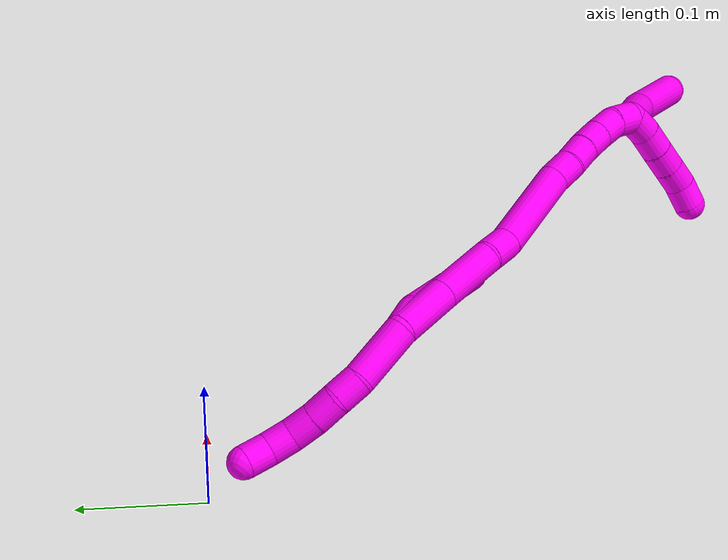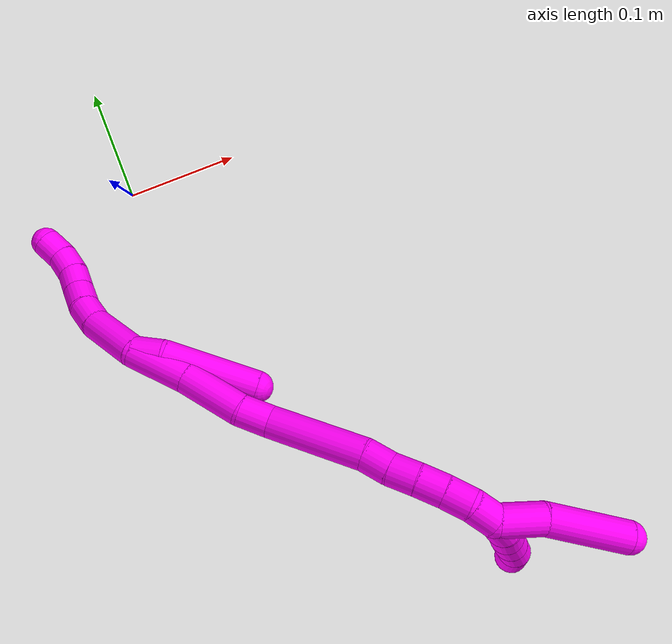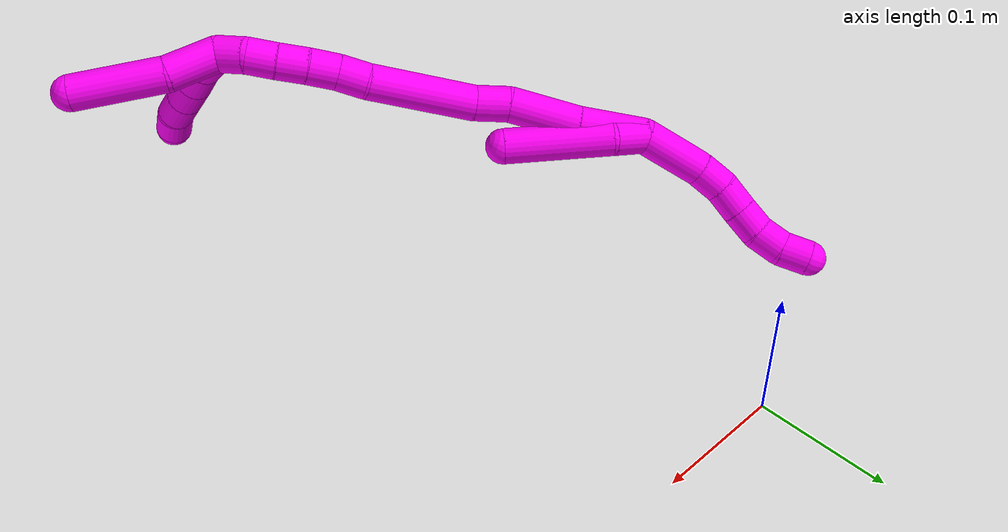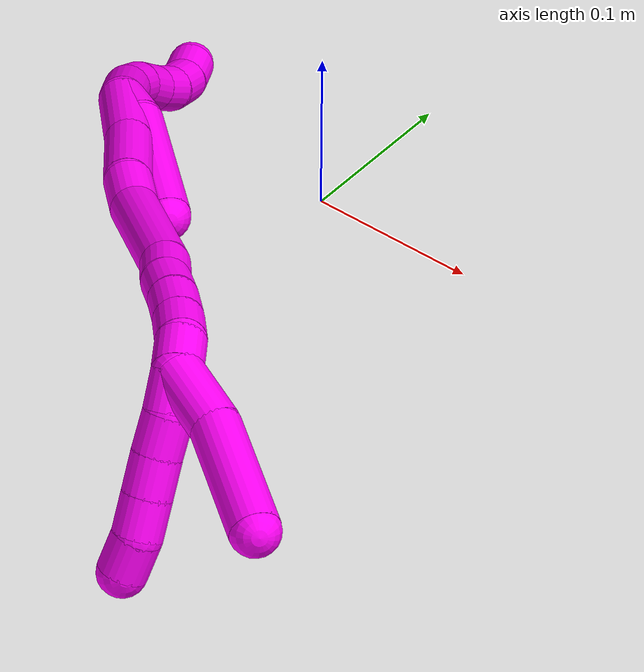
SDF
<sdf version="1.7">
 <world name="default">
  <model name="10">
   <static>0</static>
   <link name="10">
    <collision name="collision-cylinder-e_1_2_8">
     <pose>0.003211 0.003961 -0.023373 -2.97372 0.134643 -1.35116</pose>
     <geometry><cylinder><radius>0.0125</radius><length>0.047845</length></cylinder></geometry>
     <surface>
      <friction><ode><mu>1.16</mu><mu2>1.16</mu2><slip1>0</slip1><slip2>0</slip2></ode></friction>
      <contact><ode><kp>1e+06</kp><kd>1</kd><max_vel>0</max_vel><min_depth>0.001</min_depth></ode></contact>
     </surface>
    </collision>
    <visual name="visual-cylinder-e_1_2_8">
     <pose>0.003211 0.003961 -0.023373 -2.97372 0.134643 -1.35116</pose>
     <geometry><cylinder><radius>0.0125</radius><length>0.047845</length></cylinder></geometry>
     <material><ambient>1 0 0.964706 1</ambient></material>
    </visual>
    <collision name="collision-cylinder-e_2_8_9">
     <pose>0.008951 0.011729 -0.056246 -2.76041 0.242212 -1.12551</pose>
     <geometry><cylinder><radius>0.0125</radius><length>0.021085</length></cylinder></geometry>
     <surface>
      <friction><ode><mu>1.16</mu><mu2>1.16</mu2><slip1>0</slip1><slip2>0</slip2></ode></friction>
      <contact><ode><kp>1e+06</kp><kd>1</kd><max_vel>0</max_vel><min_depth>0.001</min_depth></ode></contact>
     </surface>
    </collision>
    <visual name="visual-cylinder-e_2_8_9">
     <pose>0.008951 0.011729 -0.056246 -2.76041 0.242212 -1.12551</pose>
     <geometry><cylinder><radius>0.0125</radius><length>0.021085</length></cylinder></geometry>
     <material><ambient>1 0 0.964706 1</ambient></material>
    </visual>
    <collision name="collision-cylinder-e_3_9_10">
     <pose>0.015958 0.019798 -0.074074 -2.66867 0.446464 -1.51118</pose>
     <geometry><cylinder><radius>0.0125</radius><length>0.020743</length></cylinder></geometry>
     <surface>
      <friction><ode><mu>1.16</mu><mu2>1.16</mu2><slip1>0</slip1><slip2>0</slip2></ode></friction>
      <contact><ode><kp>1e+06</kp><kd>1</kd><max_vel>0</max_vel><min_depth>0.001</min_depth></ode></contact>
     </surface>
    </collision>
    <visual name="visual-cylinder-e_3_9_10">
     <pose>0.015958 0.019798 -0.074074 -2.66867 0.446464 -1.51118</pose>
     <geometry><cylinder><radius>0.0125</radius><length>0.020743</length></cylinder></geometry>
     <material><ambient>1 0 0.964706 1</ambient></material>
    </visual>
    <collision name="collision-cylinder-e_4_10_11">
     <pose>0.02428 0.029065 -0.090241 -2.57329 0.391902 -1.19389</pose>
     <geometry><cylinder><radius>0.0125</radius><length>0.020129</length></cylinder></geometry>
     <surface>
      <friction><ode><mu>1.16</mu><mu2>1.16</mu2><slip1>0</slip1><slip2>0</slip2></ode></friction>
      <contact><ode><kp>1e+06</kp><kd>1</kd><max_vel>0</max_vel><min_depth>0.001</min_depth></ode></contact>
     </surface>
    </collision>
    <visual name="visual-cylinder-e_4_10_11">
     <pose>0.02428 0.029065 -0.090241 -2.57329 0.391902 -1.19389</pose>
     <geometry><cylinder><radius>0.0125</radius><length>0.020129</length></cylinder></geometry>
     <material><ambient>1 0 0.964706 1</ambient></material>
    </visual>
    <collision name="collision-cylinder-e_5_11_12">
     <pose>0.029484 0.039021 -0.106701 -2.62037 0.135976 -0.499997</pose>
     <geometry><cylinder><radius>0.0125</radius><length>0.020067</length></cylinder></geometry>
     <surface>
      <friction><ode><mu>1.16</mu><mu2>1.16</mu2><slip1>0</slip1><slip2>0</slip2></ode></friction>
      <contact><ode><kp>1e+06</kp><kd>1</kd><max_vel>0</max_vel><min_depth>0.001</min_depth></ode></contact>
     </surface>
    </collision>
    <visual name="visual-cylinder-e_5_11_12">
     <pose>0.029484 0.039021 -0.106701 -2.62037 0.135976 -0.499997</pose>
     <geometry><cylinder><radius>0.0125</radius><length>0.020067</length></cylinder></geometry>
     <material><ambient>1 0 0.964706 1</ambient></material>
    </visual>
    <collision name="collision-cylinder-e_6_12_6">
     <pose>0.029554 0.048224 -0.124353 -2.70139 -0.128552 0.56026</pose>
     <geometry><cylinder><radius>0.0125</radius><length>0.020133</length></cylinder></geometry>
     <surface>
      <friction><ode><mu>1.16</mu><mu2>1.16</mu2><slip1>0</slip1><slip2>0</slip2></ode></friction>
      <contact><ode><kp>1e+06</kp><kd>1</kd><max_vel>0</max_vel><min_depth>0.001</min_depth></ode></contact>
     </surface>
    </collision>
    <visual name="visual-cylinder-e_6_12_6">
     <pose>0.029554 0.048224 -0.124353 -2.70139 -0.128552 0.56026</pose>
     <geometry><cylinder><radius>0.0125</radius><length>0.020133</length></cylinder></geometry>
     <material><ambient>1 0 0.964706 1</ambient></material>
    </visual>
    <collision name="collision-cylinder-e_1_2_13">
     <pose>0.004308 0.00141 0.011112 -0.126173 0.367172 -0.023457</pose>
     <geometry><cylinder><radius>0.0125</radius><length>0.024002</length></cylinder></geometry>
     <surface>
      <friction><ode><mu>1.16</mu><mu2>1.16</mu2><slip1>0</slip1><slip2>0</slip2></ode></friction>
      <contact><ode><kp>1e+06</kp><kd>1</kd><max_vel>0</max_vel><min_depth>0.001</min_depth></ode></contact>
     </surface>
    </collision>
    <visual name="visual-cylinder-e_1_2_13">
     <pose>0.004308 0.00141 0.011112 -0.126173 0.367172 -0.023457</pose>
     <geometry><cylinder><radius>0.0125</radius><length>0.024002</length></cylinder></geometry>
     <material><ambient>1 0 0.964706 1</ambient></material>
    </visual>
    <collision name="collision-cylinder-e_2_13_5">
     <pose>0.025888 -0.001695 0.055769 0.133776 0.471844 0.032205</pose>
     <geometry><cylinder><radius>0.0125</radius><length>0.075998</length></cylinder></geometry>
     <surface>
      <friction><ode><mu>1.16</mu><mu2>1.16</mu2><slip1>0</slip1><slip2>0</slip2></ode></friction>
      <contact><ode><kp>1e+06</kp><kd>1</kd><max_vel>0</max_vel><min_depth>0.001</min_depth></ode></contact>
     </surface>
    </collision>
    <visual name="visual-cylinder-e_2_13_5">
     <pose>0.025888 -0.001695 0.055769 0.133776 0.471844 0.032205</pose>
     <geometry><cylinder><radius>0.0125</radius><length>0.075998</length></cylinder></geometry>
     <material><ambient>1 0 0.964706 1</ambient></material>
    </visual>
    <collision name="collision-cylinder-e_1_2_14">
     <pose>0.00516 -0.003868 0.022931 0.167125 0.218366 0.018362</pose>
     <geometry><cylinder><radius>0.0125</radius><length>0.047641</length></cylinder></geometry>
     <surface>
      <friction><ode><mu>1.16</mu><mu2>1.16</mu2><slip1>0</slip1><slip2>0</slip2></ode></friction>
      <contact><ode><kp>1e+06</kp><kd>1</kd><max_vel>0</max_vel><min_depth>0.001</min_depth></ode></contact>
     </surface>
    </collision>
    <visual name="visual-cylinder-e_1_2_14">
     <pose>0.00516 -0.003868 0.022931 0.167125 0.218366 0.018362</pose>
     <geometry><cylinder><radius>0.0125</radius><length>0.047641</length></cylinder></geometry>
     <material><ambient>1 0 0.964706 1</ambient></material>
    </visual>
    <collision name="collision-cylinder-e_2_14_15">
     <pose>0.013688 -0.013177 0.069887 0.222678 0.135859 0.015212</pose>
     <geometry><cylinder><radius>0.0125</radius><length>0.049725</length></cylinder></geometry>
     <surface>
      <friction><ode><mu>1.16</mu><mu2>1.16</mu2><slip1>0</slip1><slip2>0</slip2></ode></friction>
      <contact><ode><kp>1e+06</kp><kd>1</kd><max_vel>0</max_vel><min_depth>0.001</min_depth></ode></contact>
     </surface>
    </collision>
    <visual name="visual-cylinder-e_2_14_15">
     <pose>0.013688 -0.013177 0.069887 0.222678 0.135859 0.015212</pose>
     <geometry><cylinder><radius>0.0125</radius><length>0.049725</length></cylinder></geometry>
     <material><ambient>1 0 0.964706 1</ambient></material>
    </visual>
    <collision name="collision-cylinder-e_3_15_16">
     <pose>0.021359 -0.020217 0.105198 0.140849 0.361008 0.025745</pose>
     <geometry><cylinder><radius>0.0125</radius><length>0.024369</length></cylinder></geometry>
     <surface>
      <friction><ode><mu>1.16</mu><mu2>1.16</mu2><slip1>0</slip1><slip2>0</slip2></ode></friction>
      <contact><ode><kp>1e+06</kp><kd>1</kd><max_vel>0</max_vel><min_depth>0.001</min_depth></ode></contact>
     </surface>
    </collision>
    <visual name="visual-cylinder-e_3_15_16">
     <pose>0.021359 -0.020217 0.105198 0.140849 0.361008 0.025745</pose>
     <geometry><cylinder><radius>0.0125</radius><length>0.024369</length></cylinder></geometry>
     <material><ambient>1 0 0.964706 1</ambient></material>
    </visual>
    <collision name="collision-cylinder-e_4_16_17">
     <pose>0.031339 -0.0222 0.154057 0.010177 0.149912 0.000764</pose>
     <geometry><cylinder><radius>0.0125</radius><length>0.076001</length></cylinder></geometry>
     <surface>
      <friction><ode><mu>1.16</mu><mu2>1.16</mu2><slip1>0</slip1><slip2>0</slip2></ode></friction>
      <contact><ode><kp>1e+06</kp><kd>1</kd><max_vel>0</max_vel><min_depth>0.001</min_depth></ode></contact>
     </surface>
    </collision>
    <visual name="visual-cylinder-e_4_16_17">
     <pose>0.031339 -0.0222 0.154057 0.010177 0.149912 0.000764</pose>
     <geometry><cylinder><radius>0.0125</radius><length>0.076001</length></cylinder></geometry>
     <material><ambient>1 0 0.964706 1</ambient></material>
    </visual>
    <collision name="collision-cylinder-e_5_17_18">
     <pose>0.038015 -0.024494 0.201752 0.186704 0.096829 0.009073</pose>
     <geometry><cylinder><radius>0.0125</radius><length>0.020701</length></cylinder></geometry>
     <surface>
      <friction><ode><mu>1.16</mu><mu2>1.16</mu2><slip1>0</slip1><slip2>0</slip2></ode></friction>
      <contact><ode><kp>1e+06</kp><kd>1</kd><max_vel>0</max_vel><min_depth>0.001</min_depth></ode></contact>
     </surface>
    </collision>
    <visual name="visual-cylinder-e_5_17_18">
     <pose>0.038015 -0.024494 0.201752 0.186704 0.096829 0.009073</pose>
     <geometry><cylinder><radius>0.0125</radius><length>0.020701</length></cylinder></geometry>
     <material><ambient>1 0 0.964706 1</ambient></material>
    </visual>
    <collision name="collision-cylinder-e_6_18_19">
     <pose>0.040733 -0.026972 0.222086 0.05528 0.166432 0.004612</pose>
     <geometry><cylinder><radius>0.0125</radius><length>0.02074</length></cylinder></geometry>
     <surface>
      <friction><ode><mu>1.16</mu><mu2>1.16</mu2><slip1>0</slip1><slip2>0</slip2></ode></friction>
      <contact><ode><kp>1e+06</kp><kd>1</kd><max_vel>0</max_vel><min_depth>0.001</min_depth></ode></contact>
     </surface>
    </collision>
    <visual name="visual-cylinder-e_6_18_19">
     <pose>0.040733 -0.026972 0.222086 0.05528 0.166432 0.004612</pose>
     <geometry><cylinder><radius>0.0125</radius><length>0.02074</length></cylinder></geometry>
     <material><ambient>1 0 0.964706 1</ambient></material>
    </visual>
    <collision name="collision-cylinder-e_7_19_20">
     <pose>0.044791 -0.028765 0.242225 0.12311 0.229746 0.014222</pose>
     <geometry><cylinder><radius>0.0125</radius><length>0.020547</length></cylinder></geometry>
     <surface>
      <friction><ode><mu>1.16</mu><mu2>1.16</mu2><slip1>0</slip1><slip2>0</slip2></ode></friction>
      <contact><ode><kp>1e+06</kp><kd>1</kd><max_vel>0</max_vel><min_depth>0.001</min_depth></ode></contact>
     </surface>
    </collision>
    <visual name="visual-cylinder-e_7_19_20">
     <pose>0.044791 -0.028765 0.242225 0.12311 0.229746 0.014222</pose>
     <geometry><cylinder><radius>0.0125</radius><length>0.020547</length></cylinder></geometry>
     <material><ambient>1 0 0.964706 1</ambient></material>
    </visual>
    <collision name="collision-cylinder-e_8_20_21">
     <pose>0.049315 -0.031826 0.261876 0.186251 0.217351 0.020379</pose>
     <geometry><cylinder><radius>0.0125</radius><length>0.020265</length></cylinder></geometry>
     <surface>
      <friction><ode><mu>1.16</mu><mu2>1.16</mu2><slip1>0</slip1><slip2>0</slip2></ode></friction>
      <contact><ode><kp>1e+06</kp><kd>1</kd><max_vel>0</max_vel><min_depth>0.001</min_depth></ode></contact>
     </surface>
    </collision>
    <visual name="visual-cylinder-e_8_20_21">
     <pose>0.049315 -0.031826 0.261876 0.186251 0.217351 0.020379</pose>
     <geometry><cylinder><radius>0.0125</radius><length>0.020265</length></cylinder></geometry>
     <material><ambient>1 0 0.964706 1</ambient></material>
    </visual>
    <collision name="collision-cylinder-e_9_21_1">
     <pose>0.055491 -0.037549 0.279909 0.437903 0.410262 0.092527</pose>
     <geometry><cylinder><radius>0.0125</radius><length>0.020011</length></cylinder></geometry>
     <surface>
      <friction><ode><mu>1.16</mu><mu2>1.16</mu2><slip1>0</slip1><slip2>0</slip2></ode></friction>
      <contact><ode><kp>1e+06</kp><kd>1</kd><max_vel>0</max_vel><min_depth>0.001</min_depth></ode></contact>
     </surface>
    </collision>
    <visual name="visual-cylinder-e_9_21_1">
     <pose>0.055491 -0.037549 0.279909 0.437903 0.410262 0.092527</pose>
     <geometry><cylinder><radius>0.0125</radius><length>0.020011</length></cylinder></geometry>
     <material><ambient>1 0 0.964706 1</ambient></material>
    </visual>
    <collision name="collision-cylinder-e_1_1_22">
     <pose>0.070927 -0.038553 0.301706 -0.210784 0.692624 -0.076308</pose>
     <geometry><cylinder><radius>0.0125</radius><length>0.035846</length></cylinder></geometry>
     <surface>
      <friction><ode><mu>1.16</mu><mu2>1.16</mu2><slip1>0</slip1><slip2>0</slip2></ode></friction>
      <contact><ode><kp>1e+06</kp><kd>1</kd><max_vel>0</max_vel><min_depth>0.001</min_depth></ode></contact>
     </surface>
    </collision>
    <visual name="visual-cylinder-e_1_1_22">
     <pose>0.070927 -0.038553 0.301706 -0.210784 0.692624 -0.076308</pose>
     <geometry><cylinder><radius>0.0125</radius><length>0.035846</length></cylinder></geometry>
     <material><ambient>1 0 0.964706 1</ambient></material>
    </visual>
    <collision name="collision-cylinder-e_2_22_4">
     <pose>0.099979 -0.037413 0.341949 0.065155 0.581064 0.019487</pose>
     <geometry><cylinder><radius>0.0125</radius><length>0.064154</length></cylinder></geometry>
     <surface>
      <friction><ode><mu>1.16</mu><mu2>1.16</mu2><slip1>0</slip1><slip2>0</slip2></ode></friction>
      <contact><ode><kp>1e+06</kp><kd>1</kd><max_vel>0</max_vel><min_depth>0.001</min_depth></ode></contact>
     </surface>
    </collision>
    <visual name="visual-cylinder-e_2_22_4">
     <pose>0.099979 -0.037413 0.341949 0.065155 0.581064 0.019487</pose>
     <geometry><cylinder><radius>0.0125</radius><length>0.064154</length></cylinder></geometry>
     <material><ambient>1 0 0.964706 1</ambient></material>
    </visual>
    <collision name="collision-cylinder-e_1_1_23">
     <pose>0.067611 -0.046948 0.290108 1.2403 0.949179 0.703284</pose>
     <geometry><cylinder><radius>0.0125</radius><length>0.02</length></cylinder></geometry>
     <surface>
      <friction><ode><mu>1.16</mu><mu2>1.16</mu2><slip1>0</slip1><slip2>0</slip2></ode></friction>
      <contact><ode><kp>1e+06</kp><kd>1</kd><max_vel>0</max_vel><min_depth>0.001</min_depth></ode></contact>
     </surface>
    </collision>
    <visual name="visual-cylinder-e_1_1_23">
     <pose>0.067611 -0.046948 0.290108 1.2403 0.949179 0.703284</pose>
     <geometry><cylinder><radius>0.0125</radius><length>0.02</length></cylinder></geometry>
     <material><ambient>1 0 0.964706 1</ambient></material>
    </visual>
    <collision name="collision-cylinder-e_2_23_24">
     <pose>0.083879 -0.058267 0.29192 1.58421 0.950699 0.961659</pose>
     <geometry><cylinder><radius>0.0125</radius><length>0.02</length></cylinder></geometry>
     <surface>
      <friction><ode><mu>1.16</mu><mu2>1.16</mu2><slip1>0</slip1><slip2>0</slip2></ode></friction>
      <contact><ode><kp>1e+06</kp><kd>1</kd><max_vel>0</max_vel><min_depth>0.001</min_depth></ode></contact>
     </surface>
    </collision>
    <visual name="visual-cylinder-e_2_23_24">
     <pose>0.083879 -0.058267 0.29192 1.58421 0.950699 0.961659</pose>
     <geometry><cylinder><radius>0.0125</radius><length>0.02</length></cylinder></geometry>
     <material><ambient>1 0 0.964706 1</ambient></material>
    </visual>
    <collision name="collision-cylinder-e_3_24_25">
     <pose>0.100309 -0.069657 0.292166 1.51269 0.977702 0.930283</pose>
     <geometry><cylinder><radius>0.0125</radius><length>0.02</length></cylinder></geometry>
     <surface>
      <friction><ode><mu>1.16</mu><mu2>1.16</mu2><slip1>0</slip1><slip2>0</slip2></ode></friction>
      <contact><ode><kp>1e+06</kp><kd>1</kd><max_vel>0</max_vel><min_depth>0.001</min_depth></ode></contact>
     </surface>
    </collision>
    <visual name="visual-cylinder-e_3_24_25">
     <pose>0.100309 -0.069657 0.292166 1.51269 0.977702 0.930283</pose>
     <geometry><cylinder><radius>0.0125</radius><length>0.02</length></cylinder></geometry>
     <material><ambient>1 0 0.964706 1</ambient></material>
    </visual>
    <collision name="collision-cylinder-e_4_25_26">
     <pose>0.116893 -0.080821 0.292755 1.52346 0.977604 0.938867</pose>
     <geometry><cylinder><radius>0.0125</radius><length>0.02</length></cylinder></geometry>
     <surface>
      <friction><ode><mu>1.16</mu><mu2>1.16</mu2><slip1>0</slip1><slip2>0</slip2></ode></friction>
      <contact><ode><kp>1e+06</kp><kd>1</kd><max_vel>0</max_vel><min_depth>0.001</min_depth></ode></contact>
     </surface>
    </collision>
    <visual name="visual-cylinder-e_4_25_26">
     <pose>0.116893 -0.080821 0.292755 1.52346 0.977604 0.938867</pose>
     <geometry><cylinder><radius>0.0125</radius><length>0.02</length></cylinder></geometry>
     <material><ambient>1 0 0.964706 1</ambient></material>
    </visual>
    <collision name="collision-cylinder-e_5_26_3">
     <pose>0.132737 -0.092563 0.290776 1.92021 0.856045 1.15529</pose>
     <geometry><cylinder><radius>0.0125</radius><length>0.02</length></cylinder></geometry>
     <surface>
      <friction><ode><mu>1.16</mu><mu2>1.16</mu2><slip1>0</slip1><slip2>0</slip2></ode></friction>
      <contact><ode><kp>1e+06</kp><kd>1</kd><max_vel>0</max_vel><min_depth>0.001</min_depth></ode></contact>
     </surface>
    </collision>
    <visual name="visual-cylinder-e_5_26_3">
     <pose>0.132737 -0.092563 0.290776 1.92021 0.856045 1.15529</pose>
     <geometry><cylinder><radius>0.0125</radius><length>0.02</length></cylinder></geometry>
     <material><ambient>1 0 0.964706 1</ambient></material>
    </visual>
    <collision name="collision-sphere-3">
     <pose>0.14029 -0.098721 0.288532 0 -0 0</pose>
     <geometry><sphere><radius>0.0125</radius></sphere></geometry>
     <surface>
      <friction><ode><mu>1.16</mu><mu2>1.16</mu2><slip1>0</slip1><slip2>0</slip2></ode></friction>
      <contact><ode><kp>1e+06</kp><kd>1</kd><max_vel>0</max_vel><min_depth>0.001</min_depth></ode></contact>
     </surface>
    </collision>
    <visual name="visual-sphere-3">
     <pose>0.14029 -0.098721 0.288532 0 -0 0</pose>
     <geometry><sphere><radius>0.0125</radius></sphere></geometry>
     <material><ambient>1 0 0.964706 1</ambient></material>
    </visual>
    <collision name="collision-sphere-26">
     <pose>0.125184 -0.086405 0.29302 0 -0 0</pose>
     <geometry><sphere><radius>0.0125</radius></sphere></geometry>
     <surface>
      <friction><ode><mu>1.16</mu><mu2>1.16</mu2><slip1>0</slip1><slip2>0</slip2></ode></friction>
      <contact><ode><kp>1e+06</kp><kd>1</kd><max_vel>0</max_vel><min_depth>0.001</min_depth></ode></contact>
     </surface>
    </collision>
    <visual name="visual-sphere-26">
     <pose>0.125184 -0.086405 0.29302 0 -0 0</pose>
     <geometry><sphere><radius>0.0125</radius></sphere></geometry>
     <material><ambient>1 0 0.964706 1</ambient></material>
    </visual>
    <collision name="collision-sphere-25">
     <pose>0.108601 -0.075237 0.292491 0 -0 0</pose>
     <geometry><sphere><radius>0.0125</radius></sphere></geometry>
     <surface>
      <friction><ode><mu>1.16</mu><mu2>1.16</mu2><slip1>0</slip1><slip2>0</slip2></ode></friction>
      <contact><ode><kp>1e+06</kp><kd>1</kd><max_vel>0</max_vel><min_depth>0.001</min_depth></ode></contact>
     </surface>
    </collision>
    <visual name="visual-sphere-25">
     <pose>0.108601 -0.075237 0.292491 0 -0 0</pose>
     <geometry><sphere><radius>0.0125</radius></sphere></geometry>
     <material><ambient>1 0 0.964706 1</ambient></material>
    </visual>
    <collision name="collision-sphere-24">
     <pose>0.092017 -0.064077 0.291842 0 -0 0</pose>
     <geometry><sphere><radius>0.0125</radius></sphere></geometry>
     <surface>
      <friction><ode><mu>1.16</mu><mu2>1.16</mu2><slip1>0</slip1><slip2>0</slip2></ode></friction>
      <contact><ode><kp>1e+06</kp><kd>1</kd><max_vel>0</max_vel><min_depth>0.001</min_depth></ode></contact>
     </surface>
    </collision>
    <visual name="visual-sphere-24">
     <pose>0.092017 -0.064077 0.291842 0 -0 0</pose>
     <geometry><sphere><radius>0.0125</radius></sphere></geometry>
     <material><ambient>1 0 0.964706 1</ambient></material>
    </visual>
    <collision name="collision-sphere-23">
     <pose>0.07574 -0.052456 0.291997 0 -0 0</pose>
     <geometry><sphere><radius>0.0125</radius></sphere></geometry>
     <surface>
      <friction><ode><mu>1.16</mu><mu2>1.16</mu2><slip1>0</slip1><slip2>0</slip2></ode></friction>
      <contact><ode><kp>1e+06</kp><kd>1</kd><max_vel>0</max_vel><min_depth>0.001</min_depth></ode></contact>
     </surface>
    </collision>
    <visual name="visual-sphere-23">
     <pose>0.07574 -0.052456 0.291997 0 -0 0</pose>
     <geometry><sphere><radius>0.0125</radius></sphere></geometry>
     <material><ambient>1 0 0.964706 1</ambient></material>
    </visual>
    <collision name="collision-sphere-4">
     <pose>0.117586 -0.039159 0.368705 0 -0 0</pose>
     <geometry><sphere><radius>0.0125</radius></sphere></geometry>
     <surface>
      <friction><ode><mu>1.16</mu><mu2>1.16</mu2><slip1>0</slip1><slip2>0</slip2></ode></friction>
      <contact><ode><kp>1e+06</kp><kd>1</kd><max_vel>0</max_vel><min_depth>0.001</min_depth></ode></contact>
     </surface>
    </collision>
    <visual name="visual-sphere-4">
     <pose>0.117586 -0.039159 0.368705 0 -0 0</pose>
     <geometry><sphere><radius>0.0125</radius></sphere></geometry>
     <material><ambient>1 0 0.964706 1</ambient></material>
    </visual>
    <collision name="collision-sphere-22">
     <pose>0.082371 -0.035668 0.315193 0 -0 0</pose>
     <geometry><sphere><radius>0.0125</radius></sphere></geometry>
     <surface>
      <friction><ode><mu>1.16</mu><mu2>1.16</mu2><slip1>0</slip1><slip2>0</slip2></ode></friction>
      <contact><ode><kp>1e+06</kp><kd>1</kd><max_vel>0</max_vel><min_depth>0.001</min_depth></ode></contact>
     </surface>
    </collision>
    <visual name="visual-sphere-22">
     <pose>0.082371 -0.035668 0.315193 0 -0 0</pose>
     <geometry><sphere><radius>0.0125</radius></sphere></geometry>
     <material><ambient>1 0 0.964706 1</ambient></material>
    </visual>
    <collision name="collision-sphere-1">
     <pose>0.059482 -0.041439 0.288218 0 -0 0</pose>
     <geometry><sphere><radius>0.0125</radius></sphere></geometry>
     <surface>
      <friction><ode><mu>1.16</mu><mu2>1.16</mu2><slip1>0</slip1><slip2>0</slip2></ode></friction>
      <contact><ode><kp>1e+06</kp><kd>1</kd><max_vel>0</max_vel><min_depth>0.001</min_depth></ode></contact>
     </surface>
    </collision>
    <visual name="visual-sphere-1">
     <pose>0.059482 -0.041439 0.288218 0 -0 0</pose>
     <geometry><sphere><radius>0.0125</radius></sphere></geometry>
     <material><ambient>1 0 0.964706 1</ambient></material>
    </visual>
    <collision name="collision-sphere-21">
     <pose>0.0515 -0.033658 0.271599 0 -0 0</pose>
     <geometry><sphere><radius>0.0125</radius></sphere></geometry>
     <surface>
      <friction><ode><mu>1.16</mu><mu2>1.16</mu2><slip1>0</slip1><slip2>0</slip2></ode></friction>
      <contact><ode><kp>1e+06</kp><kd>1</kd><max_vel>0</max_vel><min_depth>0.001</min_depth></ode></contact>
     </surface>
    </collision>
    <visual name="visual-sphere-21">
     <pose>0.0515 -0.033658 0.271599 0 -0 0</pose>
     <geometry><sphere><radius>0.0125</radius></sphere></geometry>
     <material><ambient>1 0 0.964706 1</ambient></material>
    </visual>
    <collision name="collision-sphere-12">
     <pose>0.030844 0.04397 -0.115321 0 -0 0</pose>
     <geometry><sphere><radius>0.0125</radius></sphere></geometry>
     <surface>
      <friction><ode><mu>1.16</mu><mu2>1.16</mu2><slip1>0</slip1><slip2>0</slip2></ode></friction>
      <contact><ode><kp>1e+06</kp><kd>1</kd><max_vel>0</max_vel><min_depth>0.001</min_depth></ode></contact>
     </surface>
    </collision>
    <visual name="visual-sphere-12">
     <pose>0.030844 0.04397 -0.115321 0 -0 0</pose>
     <geometry><sphere><radius>0.0125</radius></sphere></geometry>
     <material><ambient>1 0 0.964706 1</ambient></material>
    </visual>
    <collision name="collision-sphere-11">
     <pose>0.028124 0.034071 -0.09808 0 -0 0</pose>
     <geometry><sphere><radius>0.0125</radius></sphere></geometry>
     <surface>
      <friction><ode><mu>1.16</mu><mu2>1.16</mu2><slip1>0</slip1><slip2>0</slip2></ode></friction>
      <contact><ode><kp>1e+06</kp><kd>1</kd><max_vel>0</max_vel><min_depth>0.001</min_depth></ode></contact>
     </surface>
    </collision>
    <visual name="visual-sphere-11">
     <pose>0.028124 0.034071 -0.09808 0 -0 0</pose>
     <geometry><sphere><radius>0.0125</radius></sphere></geometry>
     <material><ambient>1 0 0.964706 1</ambient></material>
    </visual>
    <collision name="collision-sphere-10">
     <pose>0.020436 0.024059 -0.082401 0 -0 0</pose>
     <geometry><sphere><radius>0.0125</radius></sphere></geometry>
     <surface>
      <friction><ode><mu>1.16</mu><mu2>1.16</mu2><slip1>0</slip1><slip2>0</slip2></ode></friction>
      <contact><ode><kp>1e+06</kp><kd>1</kd><max_vel>0</max_vel><min_depth>0.001</min_depth></ode></contact>
     </surface>
    </collision>
    <visual name="visual-sphere-10">
     <pose>0.020436 0.024059 -0.082401 0 -0 0</pose>
     <geometry><sphere><radius>0.0125</radius></sphere></geometry>
     <material><ambient>1 0 0.964706 1</ambient></material>
    </visual>
    <collision name="collision-sphere-9">
     <pose>0.01148 0.015537 -0.065746 0 -0 0</pose>
     <geometry><sphere><radius>0.0125</radius></sphere></geometry>
     <surface>
      <friction><ode><mu>1.16</mu><mu2>1.16</mu2><slip1>0</slip1><slip2>0</slip2></ode></friction>
      <contact><ode><kp>1e+06</kp><kd>1</kd><max_vel>0</max_vel><min_depth>0.001</min_depth></ode></contact>
     </surface>
    </collision>
    <visual name="visual-sphere-9">
     <pose>0.01148 0.015537 -0.065746 0 -0 0</pose>
     <geometry><sphere><radius>0.0125</radius></sphere></geometry>
     <material><ambient>1 0 0.964706 1</ambient></material>
    </visual>
    <collision name="collision-sphere-2">
     <geometry><sphere><radius>0.0125</radius></sphere></geometry>
     <surface>
      <friction><ode><mu>1.16</mu><mu2>1.16</mu2><slip1>0</slip1><slip2>0</slip2></ode></friction>
      <contact><ode><kp>1e+06</kp><kd>1</kd><max_vel>0</max_vel><min_depth>0.001</min_depth></ode></contact>
     </surface>
    </collision>
    <visual name="visual-sphere-2">
     <geometry><sphere><radius>0.0125</radius></sphere></geometry>
     <material><ambient>1 0 0.964706 1</ambient></material>
    </visual>
    <collision name="collision-sphere-19">
     <pose>0.042451 -0.027537 0.232297 0 -0 0</pose>
     <geometry><sphere><radius>0.0125</radius></sphere></geometry>
     <surface>
      <friction><ode><mu>1.16</mu><mu2>1.16</mu2><slip1>0</slip1><slip2>0</slip2></ode></friction>
      <contact><ode><kp>1e+06</kp><kd>1</kd><max_vel>0</max_vel><min_depth>0.001</min_depth></ode></contact>
     </surface>
    </collision>
    <visual name="visual-sphere-19">
     <pose>0.042451 -0.027537 0.232297 0 -0 0</pose>
     <geometry><sphere><radius>0.0125</radius></sphere></geometry>
     <material><ambient>1 0 0.964706 1</ambient></material>
    </visual>
    <collision name="collision-sphere-8">
     <pose>0.006423 0.007922 -0.046745 0 -0 0</pose>
     <geometry><sphere><radius>0.0125</radius></sphere></geometry>
     <surface>
      <friction><ode><mu>1.16</mu><mu2>1.16</mu2><slip1>0</slip1><slip2>0</slip2></ode></friction>
      <contact><ode><kp>1e+06</kp><kd>1</kd><max_vel>0</max_vel><min_depth>0.001</min_depth></ode></contact>
     </surface>
    </collision>
    <visual name="visual-sphere-8">
     <pose>0.006423 0.007922 -0.046745 0 -0 0</pose>
     <geometry><sphere><radius>0.0125</radius></sphere></geometry>
     <material><ambient>1 0 0.964706 1</ambient></material>
    </visual>
    <collision name="collision-sphere-6">
     <pose>0.028263 0.052479 -0.133384 0 -0 0</pose>
     <geometry><sphere><radius>0.0125</radius></sphere></geometry>
     <surface>
      <friction><ode><mu>1.16</mu><mu2>1.16</mu2><slip1>0</slip1><slip2>0</slip2></ode></friction>
      <contact><ode><kp>1e+06</kp><kd>1</kd><max_vel>0</max_vel><min_depth>0.001</min_depth></ode></contact>
     </surface>
    </collision>
    <visual name="visual-sphere-6">
     <pose>0.028263 0.052479 -0.133384 0 -0 0</pose>
     <geometry><sphere><radius>0.0125</radius></sphere></geometry>
     <material><ambient>1 0 0.964706 1</ambient></material>
    </visual>
    <collision name="collision-sphere-13">
     <pose>0.008616 0.002819 0.022224 0 -0 0</pose>
     <geometry><sphere><radius>0.0125</radius></sphere></geometry>
     <surface>
      <friction><ode><mu>1.16</mu><mu2>1.16</mu2><slip1>0</slip1><slip2>0</slip2></ode></friction>
      <contact><ode><kp>1e+06</kp><kd>1</kd><max_vel>0</max_vel><min_depth>0.001</min_depth></ode></contact>
     </surface>
    </collision>
    <visual name="visual-sphere-13">
     <pose>0.008616 0.002819 0.022224 0 -0 0</pose>
     <geometry><sphere><radius>0.0125</radius></sphere></geometry>
     <material><ambient>1 0 0.964706 1</ambient></material>
    </visual>
    <collision name="collision-sphere-5">
     <pose>0.043159 -0.00621 0.089313 0 -0 0</pose>
     <geometry><sphere><radius>0.0125</radius></sphere></geometry>
     <surface>
      <friction><ode><mu>1.16</mu><mu2>1.16</mu2><slip1>0</slip1><slip2>0</slip2></ode></friction>
      <contact><ode><kp>1e+06</kp><kd>1</kd><max_vel>0</max_vel><min_depth>0.001</min_depth></ode></contact>
     </surface>
    </collision>
    <visual name="visual-sphere-5">
     <pose>0.043159 -0.00621 0.089313 0 -0 0</pose>
     <geometry><sphere><radius>0.0125</radius></sphere></geometry>
     <material><ambient>1 0 0.964706 1</ambient></material>
    </visual>
    <collision name="collision-sphere-14">
     <pose>0.010321 -0.007737 0.045862 0 -0 0</pose>
     <geometry><sphere><radius>0.0125</radius></sphere></geometry>
     <surface>
      <friction><ode><mu>1.16</mu><mu2>1.16</mu2><slip1>0</slip1><slip2>0</slip2></ode></friction>
      <contact><ode><kp>1e+06</kp><kd>1</kd><max_vel>0</max_vel><min_depth>0.001</min_depth></ode></contact>
     </surface>
    </collision>
    <visual name="visual-sphere-14">
     <pose>0.010321 -0.007737 0.045862 0 -0 0</pose>
     <geometry><sphere><radius>0.0125</radius></sphere></geometry>
     <material><ambient>1 0 0.964706 1</ambient></material>
    </visual>
    <collision name="collision-sphere-15">
     <pose>0.017056 -0.018617 0.093912 0 -0 0</pose>
     <geometry><sphere><radius>0.0125</radius></sphere></geometry>
     <surface>
      <friction><ode><mu>1.16</mu><mu2>1.16</mu2><slip1>0</slip1><slip2>0</slip2></ode></friction>
      <contact><ode><kp>1e+06</kp><kd>1</kd><max_vel>0</max_vel><min_depth>0.001</min_depth></ode></contact>
     </surface>
    </collision>
    <visual name="visual-sphere-15">
     <pose>0.017056 -0.018617 0.093912 0 -0 0</pose>
     <geometry><sphere><radius>0.0125</radius></sphere></geometry>
     <material><ambient>1 0 0.964706 1</ambient></material>
    </visual>
    <collision name="collision-sphere-16">
     <pose>0.025663 -0.021817 0.116485 0 -0 0</pose>
     <geometry><sphere><radius>0.0125</radius></sphere></geometry>
     <surface>
      <friction><ode><mu>1.16</mu><mu2>1.16</mu2><slip1>0</slip1><slip2>0</slip2></ode></friction>
      <contact><ode><kp>1e+06</kp><kd>1</kd><max_vel>0</max_vel><min_depth>0.001</min_depth></ode></contact>
     </surface>
    </collision>
    <visual name="visual-sphere-16">
     <pose>0.025663 -0.021817 0.116485 0 -0 0</pose>
     <geometry><sphere><radius>0.0125</radius></sphere></geometry>
     <material><ambient>1 0 0.964706 1</ambient></material>
    </visual>
    <collision name="collision-sphere-17">
     <pose>0.037014 -0.022582 0.191629 0 -0 0</pose>
     <geometry><sphere><radius>0.0125</radius></sphere></geometry>
     <surface>
      <friction><ode><mu>1.16</mu><mu2>1.16</mu2><slip1>0</slip1><slip2>0</slip2></ode></friction>
      <contact><ode><kp>1e+06</kp><kd>1</kd><max_vel>0</max_vel><min_depth>0.001</min_depth></ode></contact>
     </surface>
    </collision>
    <visual name="visual-sphere-17">
     <pose>0.037014 -0.022582 0.191629 0 -0 0</pose>
     <geometry><sphere><radius>0.0125</radius></sphere></geometry>
     <material><ambient>1 0 0.964706 1</ambient></material>
    </visual>
    <collision name="collision-sphere-18">
     <pose>0.039015 -0.026407 0.211875 0 -0 0</pose>
     <geometry><sphere><radius>0.0125</radius></sphere></geometry>
     <surface>
      <friction><ode><mu>1.16</mu><mu2>1.16</mu2><slip1>0</slip1><slip2>0</slip2></ode></friction>
      <contact><ode><kp>1e+06</kp><kd>1</kd><max_vel>0</max_vel><min_depth>0.001</min_depth></ode></contact>
     </surface>
    </collision>
    <visual name="visual-sphere-18">
     <pose>0.039015 -0.026407 0.211875 0 -0 0</pose>
     <geometry><sphere><radius>0.0125</radius></sphere></geometry>
     <material><ambient>1 0 0.964706 1</ambient></material>
    </visual>
    <collision name="collision-sphere-20">
     <pose>0.04713 -0.029994 0.252153 0 -0 0</pose>
     <geometry><sphere><radius>0.0125</radius></sphere></geometry>
     <surface>
      <friction><ode><mu>1.16</mu><mu2>1.16</mu2><slip1>0</slip1><slip2>0</slip2></ode></friction>
      <contact><ode><kp>1e+06</kp><kd>1</kd><max_vel>0</max_vel><min_depth>0.001</min_depth></ode></contact>
     </surface>
    </collision>
    <visual name="visual-sphere-20">
     <pose>0.04713 -0.029994 0.252153 0 -0 0</pose>
     <geometry><sphere><radius>0.0125</radius></sphere></geometry>
     <material><ambient>1 0 0.964706 1</ambient></material>
    </visual>
    <inertial>
     <pose>0.042527 -0.018306 0.132823 0 -0 0</pose>
     <mass>0.75</mass>
     <inertia>
      <ixx>0.000153</ixx>
      <ixy>0</ixy>
      <ixz>0</ixz>
      <iyy>0.000129</iyy>
      <iyz>0</iyz>
      <izz>-2.1e-05</izz>
     </inertia>
    </inertial>
   </link>
   <pose>-0.021247 -0.141779 0.151398 0.453351 1.04563 -0.170603</pose>
  </model>
 </world>
</sdf>
